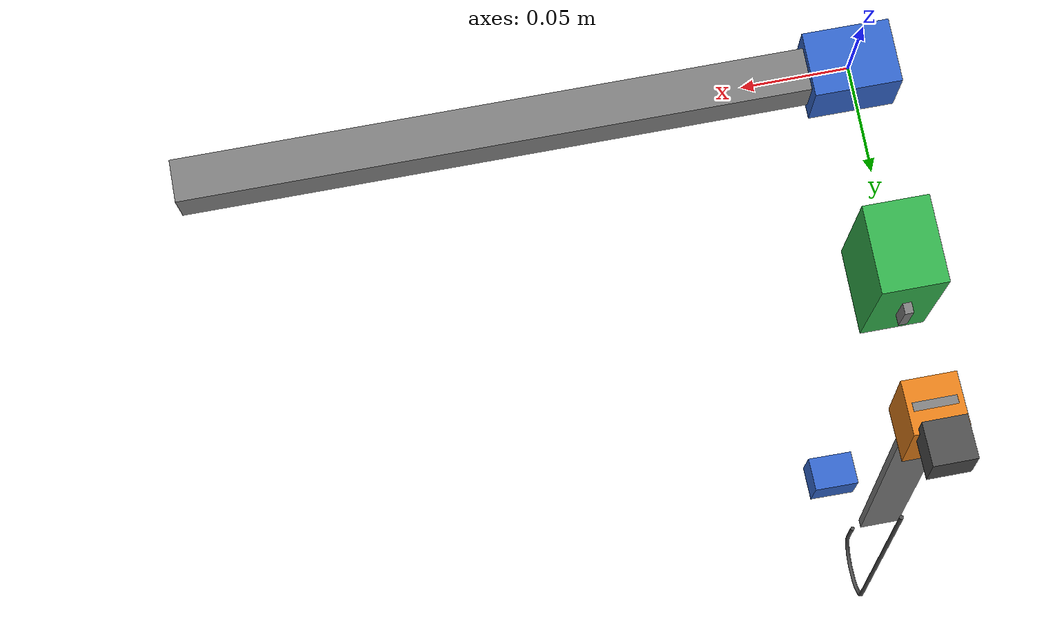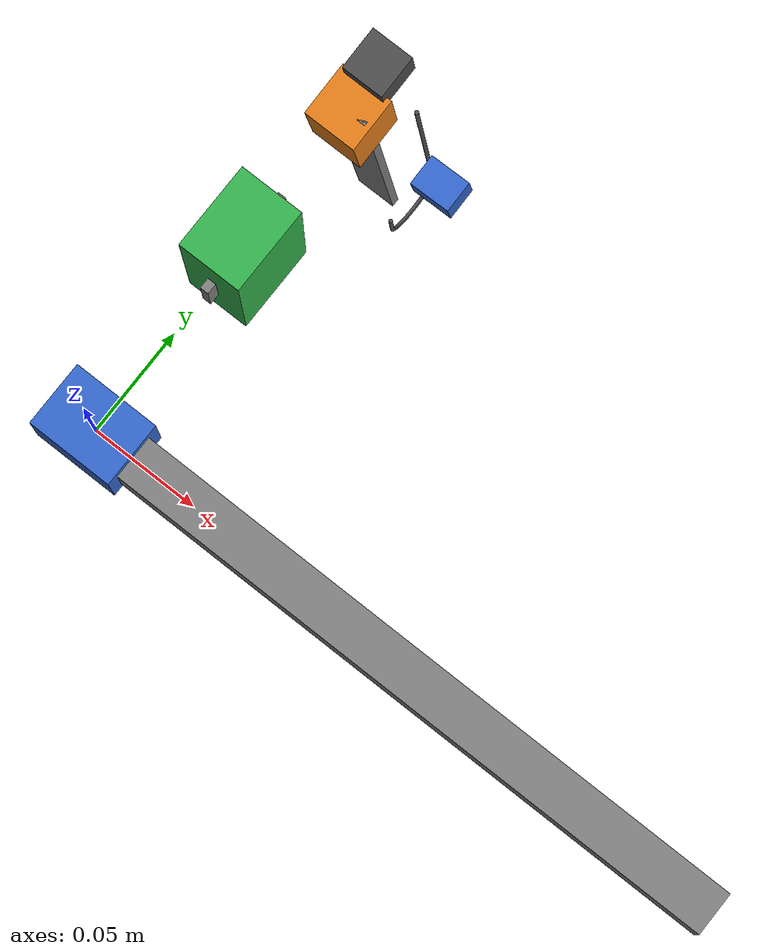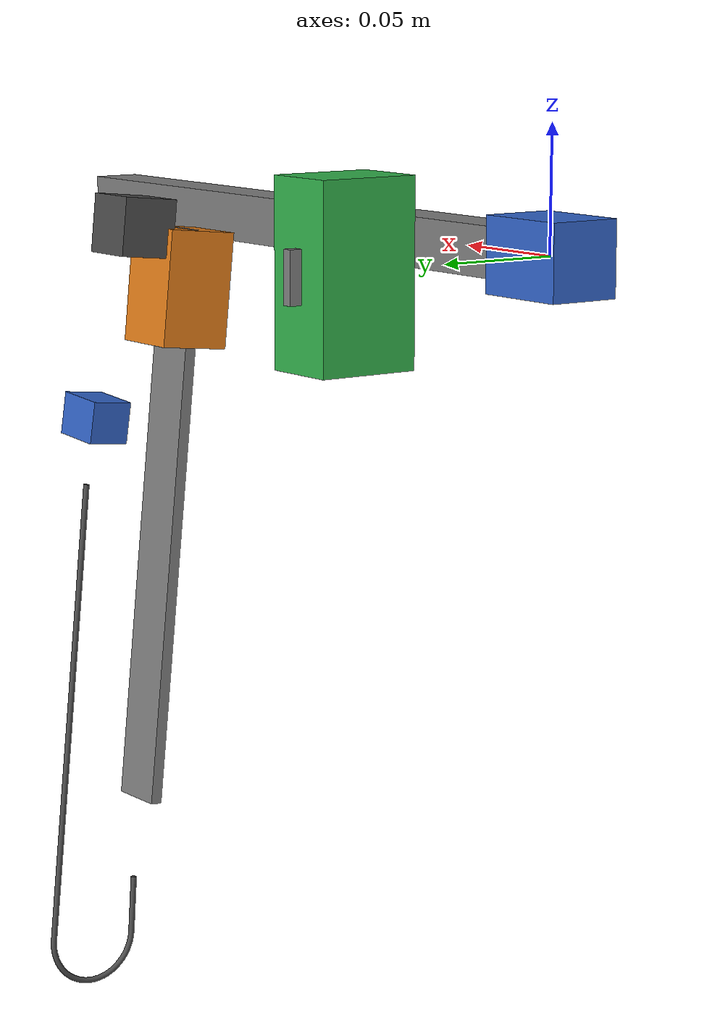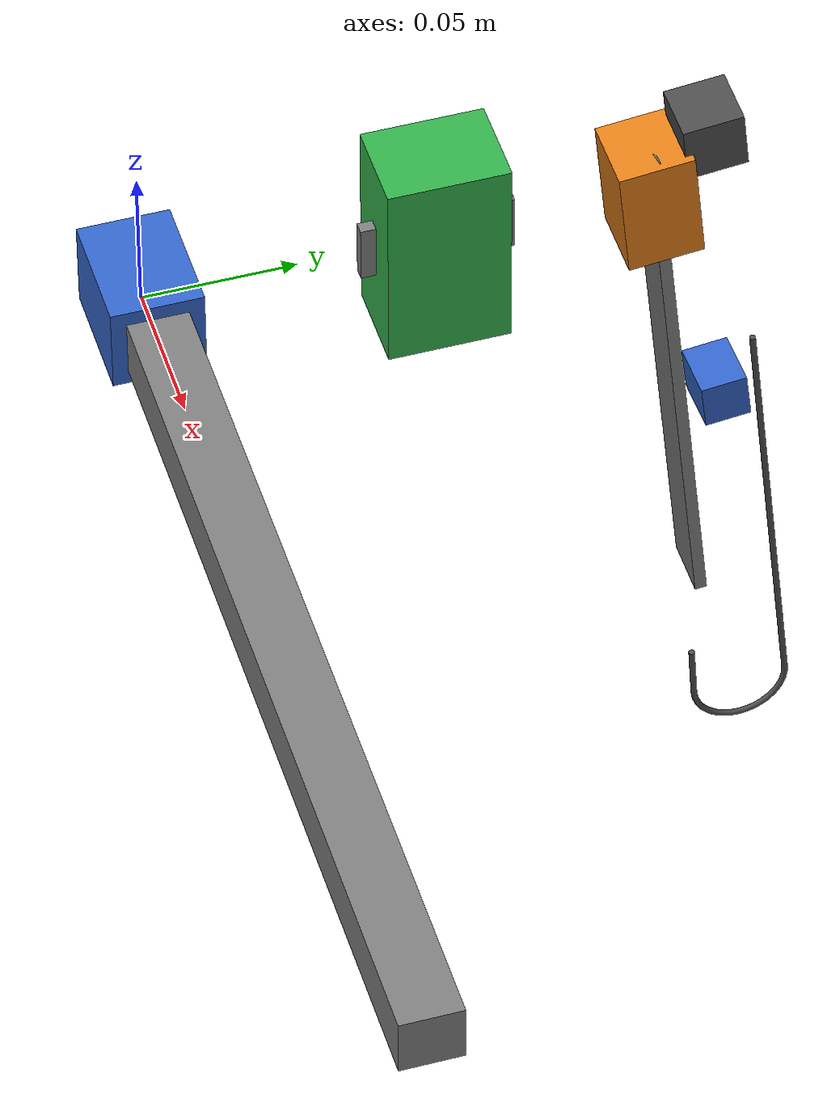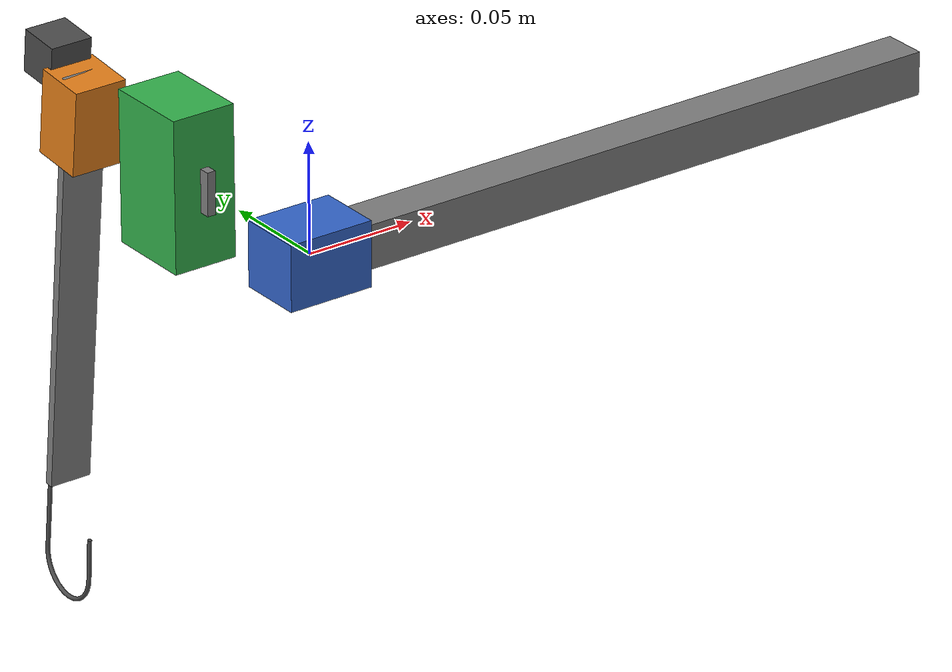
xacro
<?xml version="1.0"?>
<robot xmlns:xacro="http://www.ros.org/wiki/xacro" name="side_arm">

  <!-- ==================== XACRO ARGUMENTS ==================== -->
  <xacro:arg name="prefix" default=""/>
  <xacro:property name="prefix" value="$(arg prefix)"/>

  <!-- ==================== MATERIALS ==================== -->
  <!-- Materials are global, no prefix needed -->
  <material name="rail_gray">
    <color rgba="0.5 0.5 0.5 1.0"/>
  </material>

  <material name="carriage_blue">
    <color rgba="0.2 0.4 0.8 1.0"/>
  </material>

  <material name="carriage_green">
    <color rgba="0.2 0.7 0.3 1.0"/>
  </material>

  <material name="carriage_orange">
    <color rgba="0.9 0.5 0.1 1.0"/>
  </material>

  <material name="hook_dark">
    <color rgba="0.3 0.3 0.3 1.0"/>
  </material>

  <!-- ==================== BASE LINK ==================== -->
  <!-- Root link - connects to TF tree via static transform publisher -->
  <link name="${prefix}side_arm_origin">
    <visual>
      <origin xyz="0 0 0" rpy="0 0 0"/>
      <geometry>
        <sphere radius="0.01"/>
      </geometry>
      <material name="rail_gray"/>
    </visual>
  </link>

  <!-- ==================== X-AXIS (HORIZONTAL) ==================== -->
  <link name="${prefix}x_rail_link">
    <visual>
      <origin xyz="0.15 0 0" rpy="0 0 0"/>
      <geometry>
        <box size="0.32 0.02 0.02"/>
      </geometry>
      <material name="rail_gray"/>
    </visual>
  </link>

  <joint name="${prefix}base_to_x_rail" type="fixed">
    <parent link="${prefix}side_arm_origin"/>
    <child link="${prefix}x_rail_link"/>
    <origin xyz="0 0 0" rpy="0 0 0"/>
  </joint>

  <link name="${prefix}x_carriage_link">
    <visual>
      <origin xyz="0 0 0" rpy="0 0 0"/>
      <geometry>
        <box size="0.04 0.03 0.03"/>
      </geometry>
      <material name="carriage_blue"/>
    </visual>
  </link>

  <!-- Prismatic joint for X movement (0 to 0.3m) -->
  <joint name="${prefix}joint_x" type="prismatic">
    <parent link="${prefix}x_rail_link"/>
    <child link="${prefix}x_carriage_link"/>
    <origin xyz="0 0 0" rpy="0 0 0"/>
    <axis xyz="-1 0 0"/>
    <limit lower="0.0" upper="0.3" effort="10" velocity="0.1"/>
  </joint>

  <!-- ==================== Y-AXIS (VERTICAL) ==================== -->
  <link name="${prefix}y_rail_link">
    <visual>
      <origin xyz="0 0 0" rpy="0 0 0"/>
      <geometry>
        <box size="0.004 0.05 0.02"/>
      </geometry>
      <material name="rail_gray"/>
    </visual>
  </link>

  <joint name="${prefix}x_carriage_to_y_rail" type="fixed">
    <parent link="${prefix}x_carriage_link"/>
    <child link="${prefix}y_rail_link"/>
    <origin xyz="0 0.095 0" rpy="0 0 0"/>
  </joint>

  <link name="${prefix}y_carriage_link">
    <visual>
      <origin xyz="0 0 0" rpy="0 0 0"/>
      <geometry>
        <box size="0.03 0.04 0.07"/>
      </geometry>
      <material name="carriage_green"/>
    </visual>
  </link>

  <!-- Prismatic joint for Y movement (0 to 0.2m) -->
  <joint name="${prefix}joint_y" type="prismatic">
    <parent link="${prefix}y_rail_link"/>
    <child link="${prefix}y_carriage_link"/>
    <origin xyz="0 0 0" rpy="0 0 0"/>
    <axis xyz="0 1 0"/>
    <limit lower="0.0" upper="0.2" effort="10" velocity="0.05"/>
  </joint>

  <!-- ==================== Z-AXIS (DEPTH) ==================== -->
  <link name="${prefix}z_rail_link">
    <visual>
      <origin xyz="0 0 -0.08" rpy="0 0 0"/>
      <geometry>
        <box size="0.02 0.004 0.20"/>
      </geometry>
      <material name="rail_gray"/>
    </visual>
  </link>

  <joint name="${prefix}y_carriage_to_z_rail" type="fixed">
    <parent link="${prefix}y_carriage_link"/>
    <child link="${prefix}z_rail_link"/>
    <origin xyz="0 0.07 0" rpy="0.1 0 0"/>
  </joint>

  <link name="${prefix}z_carriage_link">
    <visual>
      <origin xyz="0 0 0" rpy="0 0 0"/>
      <geometry>
        <box size="0.025 0.025 0.04"/>
      </geometry>
      <material name="carriage_orange"/>
    </visual>
  </link>

  <!-- Prismatic joint for Z movement (0 to 0.20m) -->
  <joint name="${prefix}joint_z" type="prismatic">
    <parent link="${prefix}z_rail_link"/>
    <child link="${prefix}z_carriage_link"/>
    <origin xyz="0 0 0" rpy="0 0 0"/>
    <axis xyz="0 0 1"/>
    <limit lower="0.0" upper="0.20" effort="10" velocity="0.01"/>
  </joint>

  <!-- ==================== SERVO/HOOK ==================== -->
  <link name="${prefix}servo_link">
    <visual>
      <origin xyz="0 0 0" rpy="0 0 0"/>
      <geometry>
        <box size="0.02 0.02 0.02"/>
      </geometry>
      <material name="hook_dark"/>
    </visual>
  </link>

  <joint name="${prefix}joint_servo" type="revolute">
    <parent link="${prefix}z_carriage_link"/>
    <child link="${prefix}servo_link"/>
    <origin xyz="0 0.02 0.02" rpy="0 0 0"/>
    <axis xyz="0 0 1"/>
    <limit lower="-0.5" upper="0.5" effort="1" velocity="1.0"/>
  </joint>

  <link name="${prefix}hook_link">
    <visual>
      <origin xyz="0 -0.015 0" rpy="-1.5708 0 1.5708"/>
      <geometry>
        <mesh filename="package://side_arm_control/meshes/hook.stl" scale="0.001 0.001 0.001"/>
      </geometry>
      <material name="hook_dark"/>
    </visual>
  </link>

  <joint name="${prefix}servo_to_hook" type="fixed">
    <parent link="${prefix}servo_link"/>
    <child link="${prefix}hook_link"/>
    <origin xyz="0.01 0.009 -0.18" rpy="0 0 0"/>
  </joint>

  <!-- ==================== CAMERA FRAME ==================== -->
  <link name="${prefix}camera_frame">
    <visual>
      <origin xyz="0 0 0" rpy="0 0 0"/>
      <geometry>
        <box size="0.02 0.015 0.015"/>
      </geometry>
      <material name="carriage_blue"/>
    </visual>
  </link>

  <joint name="${prefix}y_carriage_to_camera" type="fixed">
    <parent link="${prefix}y_carriage_link"/>
    <child link="${prefix}camera_frame"/>
    <origin xyz="0.04 0.08 -0.05" rpy="0.1 3.2116 3.1416"/>
  </joint>

</robot>
